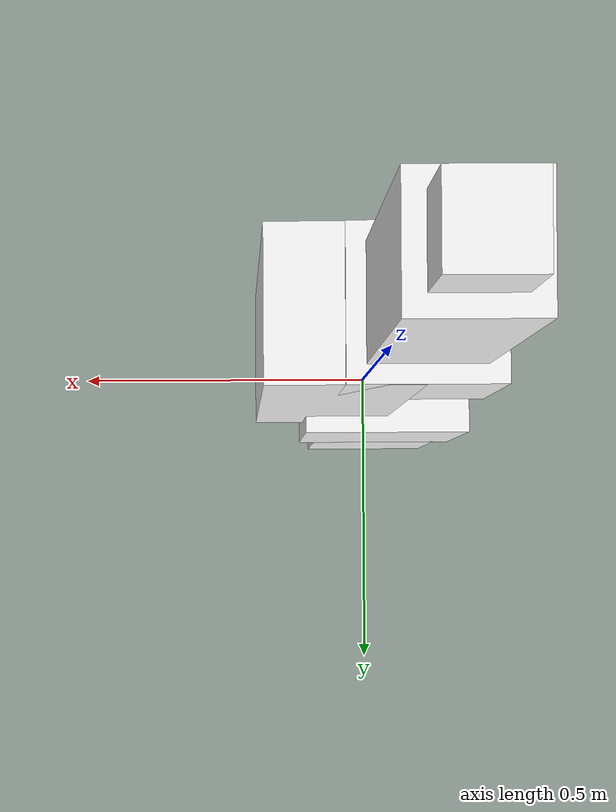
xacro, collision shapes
<?xml version="1.0"?>
<robot xmlns:xacro="http://www.ros.org/wiki/xacro" name="RS007L">
    <xacro:include filename="$(find rs_series_description)/urdf/rs007l.urdf.xacro" />
    <xacro:include filename="$(find rs_series_bringup)/ros2_control/rs007l.ros2_control.xacro" />

    <link name="world" />

    <joint name="base_joint" type="fixed">
        <parent link="world" />
        <child link="base_link" />
        <origin xyz="0.0 0.0 0.0" rpy="0.0 0.0 0.0" />
    </joint>

    <xacro:rs007l_ros2_control name="RS007L Robot System" />
</robot>

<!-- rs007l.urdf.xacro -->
<robot xmlns:xacro="http://www.ros.org/wiki/xacro" name="RS007L">

    <!-- TODO include transmission -->
    <!-- TODO include gazebo plugin -->

    <!-- link rviz colors -->
    <material name="White">
        <color rgba="1 1 1 1" />
    </material>

    <material name="Black">
        <color rgba="0 0 0 1" />
    </material>

    <!-- DH parameters -->
    <xacro:property name="dh_j1_j2_roty" value="${radians(-90)}" />
    <xacro:property name="dh_j3_j4_roty" value="${radians( 90)}" />
    <xacro:property name="dh_j4_j5_roty" value="${radians(-90)}" />
    <xacro:property name="dh_j5_j6_roty" value="${radians( 90)}" />

    <!-- link mass [kg] -->
    <xacro:property name="j0_mass" value="11" />
    <xacro:property name="j1_mass" value="8.188" />
    <xacro:property name="j2_mass" value="6.826" />
    <xacro:property name="j3_mass" value="5.236" />
    <xacro:property name="j4_mass" value="5.066" />
    <xacro:property name="j5_mass" value="1.625" />
    <xacro:property name="j6_mass" value="0.625" />

    <!-- link lengths [m] -->
    <xacro:property name="j0_length" value="0.36" />
    <xacro:property name="j1_length" value="0.0" />
    <xacro:property name="j2_length" value="0.455" />
    <xacro:property name="j3_length" value="0.0925" />
    <xacro:property name="j4_length" value="0.3825" />
    <xacro:property name="j5_length" value="0.078" />

    <!-- joint limits [rad] -->
    <xacro:property name="j1_lower_limit" value="${radians(-180)}" />
    <xacro:property name="j1_upper_limit" value="${radians( 180)}" />
    <xacro:property name="j2_lower_limit" value="${radians(-135)}" />
    <xacro:property name="j2_upper_limit" value="${radians( 135)}" />
    <xacro:property name="j3_lower_limit" value="${radians(-157)}" />
    <xacro:property name="j3_upper_limit" value="${radians( 157)}" />
    <xacro:property name="j4_lower_limit" value="${radians(-200)}" />
    <xacro:property name="j4_upper_limit" value="${radians( 200)}" />
    <xacro:property name="j5_lower_limit" value="${radians(-125)}" />
    <xacro:property name="j5_upper_limit" value="${radians( 125)}" />
    <xacro:property name="j6_lower_limit" value="${radians(-360)}" />
    <xacro:property name="j6_upper_limit" value="${radians( 360)}" />

    <!-- joint verocity limits [rad/s] -->
    <xacro:property name="j1_velocity_limit" value="${radians( 370)}" />
    <xacro:property name="j2_velocity_limit" value="${radians( 310)}" />
    <xacro:property name="j3_velocity_limit" value="${radians( 410)}" />
    <xacro:property name="j4_velocity_limit" value="${radians( 550)}" />
    <xacro:property name="j5_velocity_limit" value="${radians( 550)}" />
    <xacro:property name="j6_velocity_limit" value="${radians(1000)}" />

    <!-- TODO set correct link inertial -->
    <xacro:macro name="default_inertial" params="mass">
        <inertial>
            <mass value="${mass}" />
            <inertia ixx="1.0" ixy="0.0" ixz="0.0" iyy="1.0" iyz="0.0" izz="1.0" />
        </inertial>
    </xacro:macro>

    <!-- !The root link base_link has an inertia specified in the URDF, but KDL does not support a
    root link with an inertia.  As a workaround, you can add an extra dummy link to your URDF. -->
    <link name="base_link" />

    <joint name="joint0" type="fixed">
        <parent link="base_link" />
        <child link="link0" />
    </joint>

    <!-- Link 0 -->
    <link name="link0">
        <visual>
            <geometry>
                <mesh filename="package://rs_series_description/meshes/visual/rs007l/RS007L_J0.stl" />
            </geometry>
            <material name="White" />
            <origin rpy="0 0 0" xyz="0 0 0" />
        </visual>
        <collision>
            <geometry>
                <!-- TODO replace collision mesh into *.dae for lower computation cost -->
                <box size="0.2 0.25 0.2" />
            </geometry>
            <material name="White" />
            <origin xyz="0.0 0.0 0.1" rpy="0.0 0.0 0.0" />
        </collision>
        <xacro:default_inertial mass="${j0_mass}" />
    </link>

    <!-- Link 1 -->
    <joint name="joint1" type="revolute">
        <axis xyz="0 0 -1" rpy="0 0 0" />
        <limit effort="1000.0" lower="${j1_lower_limit}" upper="${j1_upper_limit}"
            velocity="${j1_velocity_limit}" />
        <origin xyz="0 0 ${j0_length}" rpy="0 0 0" />
        <parent link="link0" />
        <child link="link1" />
        <dynamics damping="0.0" friction="0.0" />
    </joint>

    <link name="link1">
        <visual>
            <geometry>
                <mesh filename="package://rs_series_description/meshes/visual/rs007l/RS007L_J1.stl" />
            </geometry>
            <material name="White" />
            <origin rpy="0 0 0" xyz="0 0 0" />
        </visual>
        <collision>
            <geometry>
                <!-- TODO replace collision mesh into *.dae for lower computation cost -->
                <box size="0.25 0.25 0.25" />
            </geometry>
            <material name="White" />
            <origin rpy="0 0 0" xyz="0 0 -0.05" />
        </collision>
        <xacro:default_inertial mass="${j1_mass}" />
    </link>

    <!-- Link 2 -->
    <joint name="joint2" type="revolute">
        <axis xyz="0 0 1" rpy="0 0 0" />
        <limit effort="1000.0" lower="${j2_lower_limit}" upper="${j2_upper_limit}"
            velocity="${j2_velocity_limit}" />
        <origin xyz="0 0 ${j1_length}" rpy="0 ${dh_j1_j2_roty} 0" />
        <parent link="link1" />
        <child link="link2" />
        <dynamics damping="0.0" friction="0.0" />
    </joint>

    <link name="link2">
        <visual>
            <geometry>
                <mesh filename="package://rs_series_description/meshes/visual/rs007l/RS007L_J2.stl" />
            </geometry>
            <material name="White" />
            <origin xyz="0 0 0" rpy="0 ${dh_j1_j2_roty*-1} 0" />
        </visual>
        <collision>
            <geometry>
                <!-- TODO replace collision mesh into *.dae for lower computation cost -->
                <box size="0.2 0.2 0.6" />
            </geometry>
            <material name="White" />
            <origin xyz="0.25 0 -0.1" rpy="0 ${dh_j1_j2_roty*-1} 0" />
        </collision>
        <xacro:default_inertial mass="0${j2_mass}" />
    </link>

    <!-- Link 3 -->
    <joint name="joint3" type="revolute">
        <axis xyz="0 0 -1" rpy="0 0 0" />
        <limit effort="1000.0" lower="${j3_lower_limit}" upper="${j3_upper_limit}"
            velocity="${j3_velocity_limit}" />
        <origin xyz="${j2_length} 0 0" rpy="0 0 0" />
        <parent link="link2" />
        <child link="link3" />
        <dynamics damping="0.0" friction="0.0" />
    </joint>

    <link name="link3">
        <visual>
            <geometry>
                <mesh filename="package://rs_series_description/meshes/visual/rs007l/RS007L_J3.stl" />
            </geometry>
            <material name="White" />
            <origin xyz="0 0 0" rpy="0 ${dh_j1_j2_roty*-1} 0" />
        </visual>
        <collision>
            <geometry>
                <!-- TODO replace collision mesh into *.dae for lower computation cost -->
                <box size="0.2 0.2 0.2" />
            </geometry>
            <material name="White" />
            <origin xyz="0 0 0" rpy="0 ${dh_j1_j2_roty*-1} 0" />
        </collision>
        <xacro:default_inertial mass="${j3_mass}" />
    </link>

    <!-- Link 4 -->
    <joint name="joint4" type="revolute">
        <axis xyz="0 0 1" rpy="0 0 0" />
        <limit effort="1000.0" lower="${j4_lower_limit}" upper="${j4_upper_limit}"
            velocity="${j4_velocity_limit}" />
        <origin xyz="${j3_length} 0 0" rpy="0 ${dh_j3_j4_roty} 0" />
        <parent link="link3" />
        <child link="link4" />
        <dynamics damping="0.0" friction="0.0" />
    </joint>

    <link name="link4">
        <visual>
            <geometry>
                <mesh filename="package://rs_series_description/meshes/visual/rs007l/RS007L_J4.stl" />
            </geometry>
            <material name="White" />
            <origin xyz="0 0 ${j4_length}" rpy="0 0 0" />
        </visual>
        <collision>
            <geometry>
                <!-- TODO replace collision mesh into *.dae for lower computation cost -->
                <box size="0.15 0.15 0.4" />
            </geometry>
            <material name="White" />
            <origin xyz="0 0 ${j4_length-0.2}" rpy="0 0 0" />
        </collision>
        <xacro:default_inertial mass="${j4_mass}" />
    </link>

    <!-- Link 5 -->
    <joint name="joint5" type="revolute">
        <axis xyz="0 0 -1" rpy="0 0 0" />
        <limit effort="1000.0" lower="${j5_lower_limit}" upper="${j5_upper_limit}"
            velocity="${j5_velocity_limit}" />
        <origin xyz="0 0 ${j4_length}" rpy="0 ${dh_j4_j5_roty} 0" />
        <parent link="link4" />
        <child link="link5" />
        <dynamics damping="0.0" friction="0.0" />
    </joint>

    <link name="link5">
        <visual>
            <geometry>
                <mesh filename="package://rs_series_description/meshes/visual/rs007l/RS007L_J5.stl" />
            </geometry>
            <material name="White" />
            <origin xyz="0 0 0" rpy="0 ${dh_j4_j5_roty*-1} 0" />
        </visual>
        <collision>
            <geometry>
                <!-- TODO replace collision mesh into *.dae for lower computation cost -->
                <box size="0.1 0.1 0.1" />
            </geometry>
            <material name="White" />
            <origin xyz="0.05 0 0" rpy="0 ${dh_j4_j5_roty*-1} 0" />
        </collision>
        <xacro:default_inertial mass="${j5_mass}" />
    </link>

    <!-- Link 6 -->
    <joint name="joint6" type="revolute">
        <axis xyz="0 0 1" rpy="0 0 0" />
        <limit effort="1000.0" lower="${j6_lower_limit}" upper="${j6_upper_limit}"
            velocity="${j6_velocity_limit}" />
        <origin xyz="${j5_length} 0 0" rpy="0 ${dh_j5_j6_roty} 0" />
        <parent link="link5" />
        <child link="link6" />
        <dynamics damping="0.0" friction="0.0" />
    </joint>

    <link name="link6">
        <visual>
            <geometry>
                <mesh filename="package://rs_series_description/meshes/visual/rs007l/RS007L_J6.stl" />
            </geometry>
            <material name="Black" />
            <origin xyz="0 0 0" rpy="0 0 0" />
        </visual>
        <collision>
            <geometry>
                <!-- TODO replace collision mesh into *.dae for lower computation cost -->
                <cylinder radius="0.02" length="0.005" />
            </geometry>
            <material name="Black" />
            <origin xyz="0 0 0" rpy="0 0 0" />
        </collision>
        <xacro:default_inertial mass="${j6_mass}" />
    </link>
</robot>
